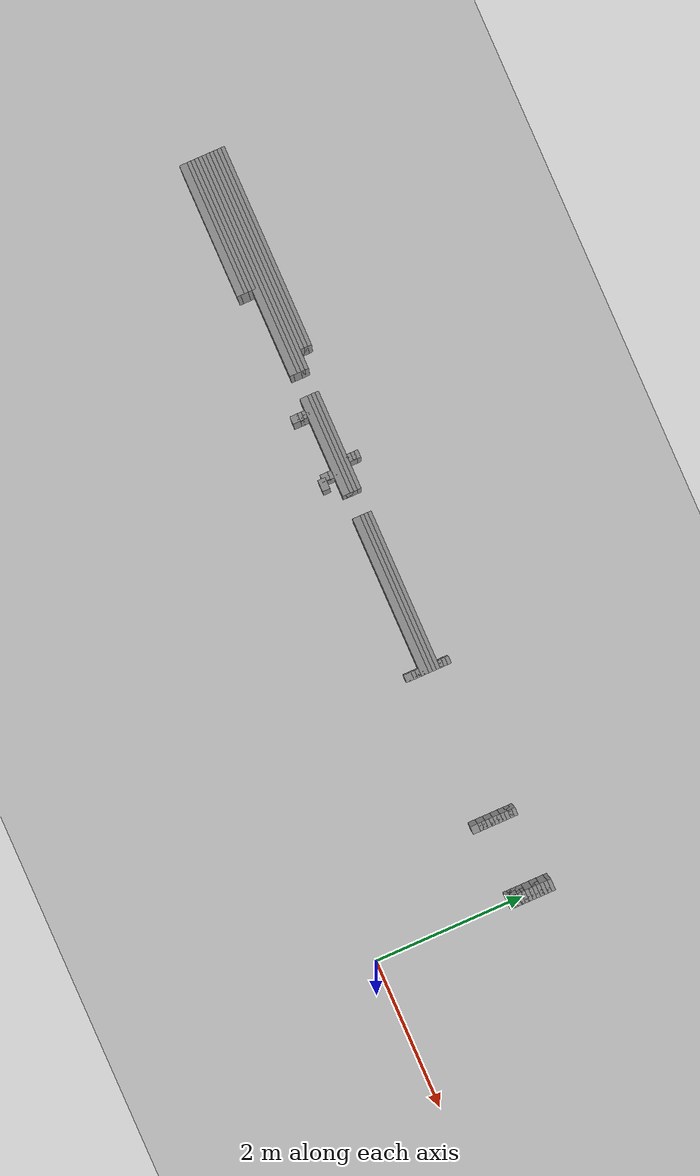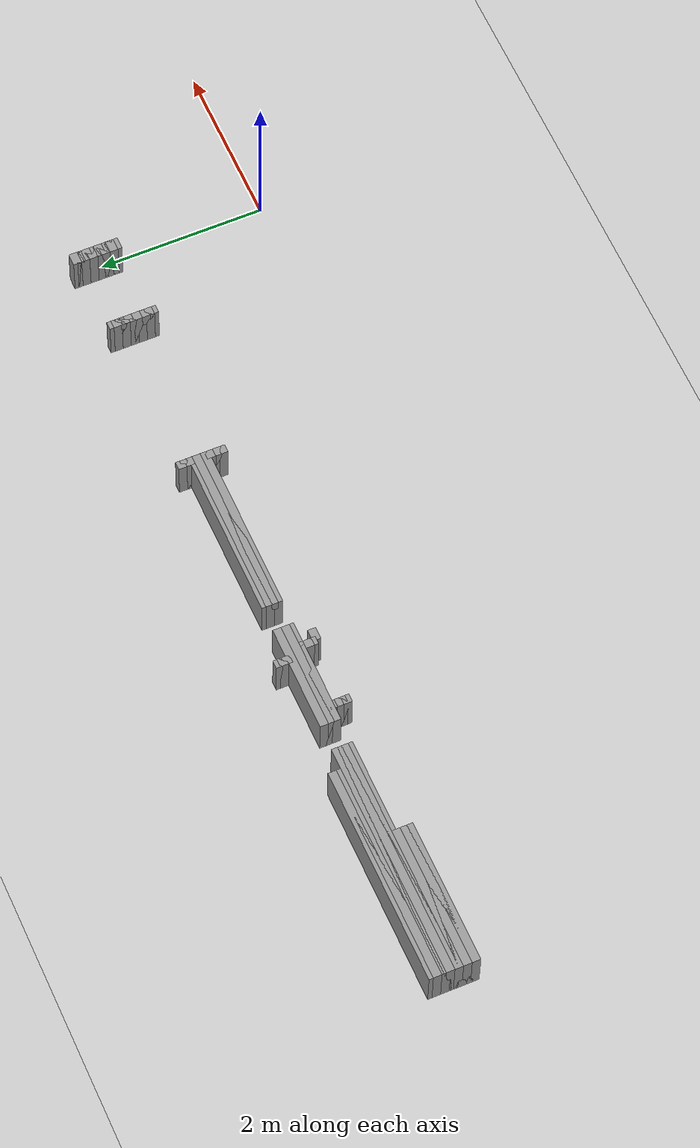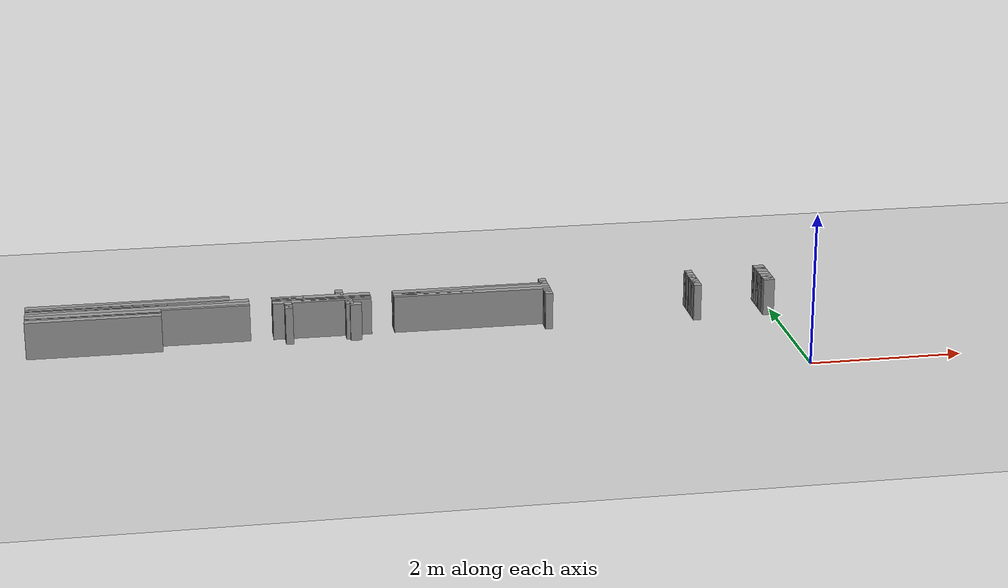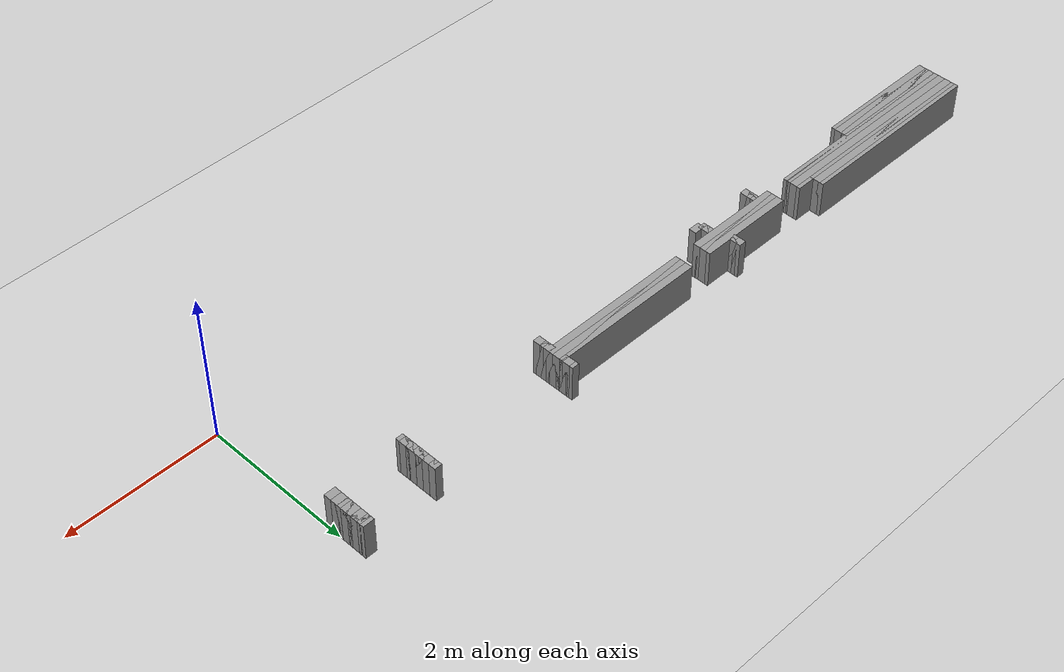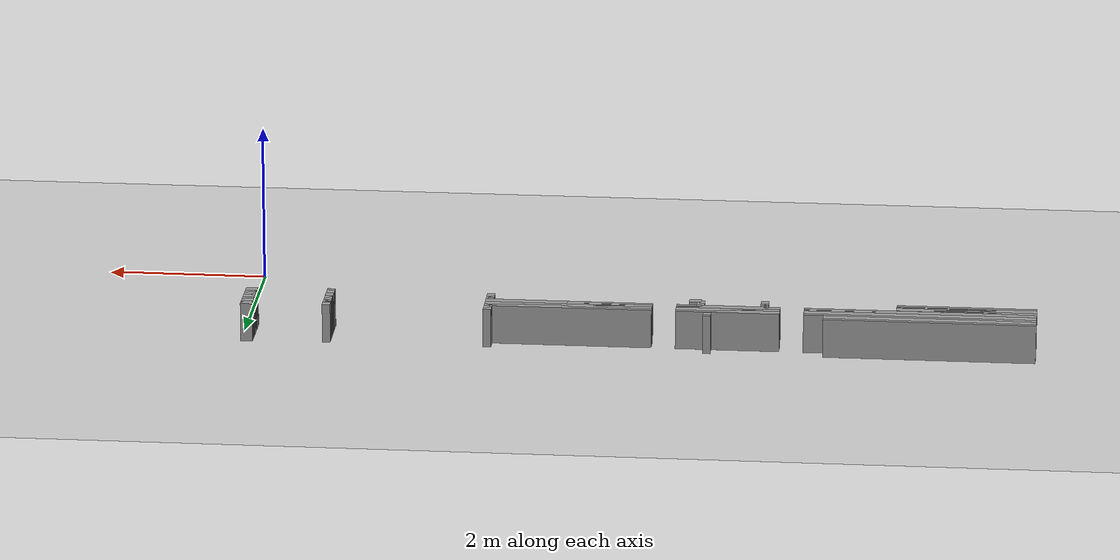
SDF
<sdf version="1.6">
 <world name="GridMap">
  <include><uri>model://sun</uri></include>
  <include><uri>model://ground_plane</uri></include>
  <model name="GridMap">
   <link name="Wall_(21.5,36.0)">
    <collision name="Wall_(21.5,36.0)_Collision">
     <geometry><box><size>0.1 0.1 0.5</size></box></geometry>
     <pose>-1.075 1.8 0.25 0 -0 0</pose>
    </collision>
    <inertial>
     <mass>0.5</mass>
     <pose>0 0.01 0 0 0 0</pose>
     <inertia><ixx>0.004</ixx><ixy>0.001</ixy><ixz>0</ixz><iyy>0.006</iyy><iyz>0</iyz><izz>0.007</izz></inertia>
    </inertial>
    <visual name="Wall_(21.5,36.0)_Visual">
     <geometry><box><size>0.1 0.1 0.5</size></box></geometry>
     <pose>-1.075 1.8 0.25 0 -0 0</pose>
     <material>
      <script><uri>file://media/materials/scripts/gazebo.material</uri><name>Gazebo/Grey</name></script>
      <ambient>1 1 1 1</ambient>
     </material>
     <meta><layer>0</layer></meta>
    </visual>
   </link>
   <link name="Wall_(62.0,36.0)">
    <collision name="Wall_(62.0,36.0)_Collision">
     <geometry><box><size>0.1 0.1 0.5</size></box></geometry>
     <pose>-3.1 1.8 0.25 0 -0 0</pose>
    </collision>
    <inertial>
     <mass>0.5</mass>
     <pose>0 0.01 0 0 0 0</pose>
     <inertia><ixx>0.004</ixx><ixy>0.001</ixy><ixz>0</ixz><iyy>0.006</iyy><iyz>0</iyz><izz>0.007</izz></inertia>
    </inertial>
    <visual name="Wall_(62.0,36.0)_Visual">
     <geometry><box><size>0.1 0.1 0.5</size></box></geometry>
     <pose>-3.1 1.8 0.25 0 -0 0</pose>
     <material>
      <script><uri>file://media/materials/scripts/gazebo.material</uri><name>Gazebo/Grey</name></script>
      <ambient>1 1 1 1</ambient>
     </material>
     <meta><layer>0</layer></meta>
    </visual>
   </link>
   <link name="Wall_(113.5,36.0)">
    <collision name="Wall_(113.5,36.0)_Collision">
     <geometry><box><size>0.15000000000000002 0.1 0.5</size></box></geometry>
     <pose>-5.675000000000001 1.8 0.25 0 -0 0</pose>
    </collision>
    <inertial>
     <mass>0.5</mass>
     <pose>0 0.01 0 0 0 0</pose>
     <inertia><ixx>0.004</ixx><ixy>0.001</ixy><ixz>0</ixz><iyy>0.006</iyy><iyz>0</iyz><izz>0.007</izz></inertia>
    </inertial>
    <visual name="Wall_(113.5,36.0)_Visual">
     <geometry><box><size>0.15000000000000002 0.1 0.5</size></box></geometry>
     <pose>-5.675000000000001 1.8 0.25 0 -0 0</pose>
     <material>
      <script><uri>file://media/materials/scripts/gazebo.material</uri><name>Gazebo/Grey</name></script>
      <ambient>1 1 1 1</ambient>
     </material>
     <meta><layer>0</layer></meta>
    </visual>
   </link>
   <link name="Wall_(131.0,36.0)">
    <collision name="Wall_(131.0,36.0)_Collision">
     <geometry><box><size>0.1 0.1 0.5</size></box></geometry>
     <pose>-6.550000000000001 1.8 0.25 0 -0 0</pose>
    </collision>
    <inertial>
     <mass>0.5</mass>
     <pose>0 0.01 0 0 0 0</pose>
     <inertia><ixx>0.004</ixx><ixy>0.001</ixy><ixz>0</ixz><iyy>0.006</iyy><iyz>0</iyz><izz>0.007</izz></inertia>
    </inertial>
    <visual name="Wall_(131.0,36.0)_Visual">
     <geometry><box><size>0.1 0.1 0.5</size></box></geometry>
     <pose>-6.550000000000001 1.8 0.25 0 -0 0</pose>
     <material>
      <script><uri>file://media/materials/scripts/gazebo.material</uri><name>Gazebo/Grey</name></script>
      <ambient>1 1 1 1</ambient>
     </material>
     <meta><layer>0</layer></meta>
    </visual>
   </link>
   <link name="Wall_(181.5,36.0)">
    <collision name="Wall_(181.5,36.0)_Collision">
     <geometry><box><size>1.75 0.1 0.5</size></box></geometry>
     <pose>-9.075000000000001 1.8 0.25 0 -0 0</pose>
    </collision>
    <inertial>
     <mass>0.5</mass>
     <pose>0 0.01 0 0 0 0</pose>
     <inertia><ixx>0.004</ixx><ixy>0.001</ixy><ixz>0</ixz><iyy>0.006</iyy><iyz>0</iyz><izz>0.007</izz></inertia>
    </inertial>
    <visual name="Wall_(181.5,36.0)_Visual">
     <geometry><box><size>1.75 0.1 0.5</size></box></geometry>
     <pose>-9.075000000000001 1.8 0.25 0 -0 0</pose>
     <material>
      <script><uri>file://media/materials/scripts/gazebo.material</uri><name>Gazebo/Grey</name></script>
      <ambient>1 1 1 1</ambient>
     </material>
     <meta><layer>0</layer></meta>
    </visual>
   </link>
   <link name="Wall_(1.5,37.0)">
    <collision name="Wall_(1.5,37.0)_Collision">
     <geometry><box><size>0.15000000000000002 0.1 0.5</size></box></geometry>
     <pose>-0.07500000000000001 1.85 0.25 0 -0 0</pose>
    </collision>
    <inertial>
     <mass>0.5</mass>
     <pose>0 0.01 0 0 0 0</pose>
     <inertia><ixx>0.004</ixx><ixy>0.001</ixy><ixz>0</ixz><iyy>0.006</iyy><iyz>0</iyz><izz>0.007</izz></inertia>
    </inertial>
    <visual name="Wall_(1.5,37.0)_Visual">
     <geometry><box><size>0.15000000000000002 0.1 0.5</size></box></geometry>
     <pose>-0.07500000000000001 1.85 0.25 0 -0 0</pose>
     <material>
      <script><uri>file://media/materials/scripts/gazebo.material</uri><name>Gazebo/Grey</name></script>
      <ambient>1 1 1 1</ambient>
     </material>
     <meta><layer>0</layer></meta>
    </visual>
   </link>
   <link name="Wall_(21.5,37.0)">
    <collision name="Wall_(21.5,37.0)_Collision">
     <geometry><box><size>0.1 0.1 0.5</size></box></geometry>
     <pose>-1.075 1.85 0.25 0 -0 0</pose>
    </collision>
    <inertial>
     <mass>0.5</mass>
     <pose>0 0.01 0 0 0 0</pose>
     <inertia><ixx>0.004</ixx><ixy>0.001</ixy><ixz>0</ixz><iyy>0.006</iyy><iyz>0</iyz><izz>0.007</izz></inertia>
    </inertial>
    <visual name="Wall_(21.5,37.0)_Visual">
     <geometry><box><size>0.1 0.1 0.5</size></box></geometry>
     <pose>-1.075 1.85 0.25 0 -0 0</pose>
     <material>
      <script><uri>file://media/materials/scripts/gazebo.material</uri><name>Gazebo/Grey</name></script>
      <ambient>1 1 1 1</ambient>
     </material>
     <meta><layer>0</layer></meta>
    </visual>
   </link>
   <link name="Wall_(62.0,37.0)">
    <collision name="Wall_(62.0,37.0)_Collision">
     <geometry><box><size>0.1 0.1 0.5</size></box></geometry>
     <pose>-3.1 1.85 0.25 0 -0 0</pose>
    </collision>
    <inertial>
     <mass>0.5</mass>
     <pose>0 0.01 0 0 0 0</pose>
     <inertia><ixx>0.004</ixx><ixy>0.001</ixy><ixz>0</ixz><iyy>0.006</iyy><iyz>0</iyz><izz>0.007</izz></inertia>
    </inertial>
    <visual name="Wall_(62.0,37.0)_Visual">
     <geometry><box><size>0.1 0.1 0.5</size></box></geometry>
     <pose>-3.1 1.85 0.25 0 -0 0</pose>
     <material>
      <script><uri>file://media/materials/scripts/gazebo.material</uri><name>Gazebo/Grey</name></script>
      <ambient>1 1 1 1</ambient>
     </material>
     <meta><layer>0</layer></meta>
    </visual>
   </link>
   <link name="Wall_(115.0,37.0)">
    <collision name="Wall_(115.0,37.0)_Collision">
     <geometry><box><size>0.1 0.1 0.5</size></box></geometry>
     <pose>-5.75 1.85 0.25 0 -0 0</pose>
    </collision>
    <inertial>
     <mass>0.5</mass>
     <pose>0 0.01 0 0 0 0</pose>
     <inertia><ixx>0.004</ixx><ixy>0.001</ixy><ixz>0</ixz><iyy>0.006</iyy><iyz>0</iyz><izz>0.007</izz></inertia>
    </inertial>
    <visual name="Wall_(115.0,37.0)_Visual">
     <geometry><box><size>0.1 0.1 0.5</size></box></geometry>
     <pose>-5.75 1.85 0.25 0 -0 0</pose>
     <material>
      <script><uri>file://media/materials/scripts/gazebo.material</uri><name>Gazebo/Grey</name></script>
      <ambient>1 1 1 1</ambient>
     </material>
     <meta><layer>0</layer></meta>
    </visual>
   </link>
   <link name="Wall_(131.0,37.0)">
    <collision name="Wall_(131.0,37.0)_Collision">
     <geometry><box><size>0.1 0.1 0.5</size></box></geometry>
     <pose>-6.550000000000001 1.85 0.25 0 -0 0</pose>
    </collision>
    <inertial>
     <mass>0.5</mass>
     <pose>0 0.01 0 0 0 0</pose>
     <inertia><ixx>0.004</ixx><ixy>0.001</ixy><ixz>0</ixz><iyy>0.006</iyy><iyz>0</iyz><izz>0.007</izz></inertia>
    </inertial>
    <visual name="Wall_(131.0,37.0)_Visual">
     <geometry><box><size>0.1 0.1 0.5</size></box></geometry>
     <pose>-6.550000000000001 1.85 0.25 0 -0 0</pose>
     <material>
      <script><uri>file://media/materials/scripts/gazebo.material</uri><name>Gazebo/Grey</name></script>
      <ambient>1 1 1 1</ambient>
     </material>
     <meta><layer>0</layer></meta>
    </visual>
   </link>
   <link name="Wall_(181.5,37.0)">
    <collision name="Wall_(181.5,37.0)_Collision">
     <geometry><box><size>1.75 0.1 0.5</size></box></geometry>
     <pose>-9.075000000000001 1.85 0.25 0 -0 0</pose>
    </collision>
    <inertial>
     <mass>0.5</mass>
     <pose>0 0.01 0 0 0 0</pose>
     <inertia><ixx>0.004</ixx><ixy>0.001</ixy><ixz>0</ixz><iyy>0.006</iyy><iyz>0</iyz><izz>0.007</izz></inertia>
    </inertial>
    <visual name="Wall_(181.5,37.0)_Visual">
     <geometry><box><size>1.75 0.1 0.5</size></box></geometry>
     <pose>-9.075000000000001 1.85 0.25 0 -0 0</pose>
     <material>
      <script><uri>file://media/materials/scripts/gazebo.material</uri><name>Gazebo/Grey</name></script>
      <ambient>1 1 1 1</ambient>
     </material>
     <meta><layer>0</layer></meta>
    </visual>
   </link>
   <link name="Wall_(1.5,38.0)">
    <collision name="Wall_(1.5,38.0)_Collision">
     <geometry><box><size>0.15000000000000002 0.1 0.5</size></box></geometry>
     <pose>-0.07500000000000001 1.9000000000000001 0.25 0 -0 0</pose>
    </collision>
    <inertial>
     <mass>0.5</mass>
     <pose>0 0.01 0 0 0 0</pose>
     <inertia><ixx>0.004</ixx><ixy>0.001</ixy><ixz>0</ixz><iyy>0.006</iyy><iyz>0</iyz><izz>0.007</izz></inertia>
    </inertial>
    <visual name="Wall_(1.5,38.0)_Visual">
     <geometry><box><size>0.15000000000000002 0.1 0.5</size></box></geometry>
     <pose>-0.07500000000000001 1.9000000000000001 0.25 0 -0 0</pose>
     <material>
      <script><uri>file://media/materials/scripts/gazebo.material</uri><name>Gazebo/Grey</name></script>
      <ambient>1 1 1 1</ambient>
     </material>
     <meta><layer>0</layer></meta>
    </visual>
   </link>
   <link name="Wall_(21.5,38.0)">
    <collision name="Wall_(21.5,38.0)_Collision">
     <geometry><box><size>0.1 0.1 0.5</size></box></geometry>
     <pose>-1.075 1.9000000000000001 0.25 0 -0 0</pose>
    </collision>
    <inertial>
     <mass>0.5</mass>
     <pose>0 0.01 0 0 0 0</pose>
     <inertia><ixx>0.004</ixx><ixy>0.001</ixy><ixz>0</ixz><iyy>0.006</iyy><iyz>0</iyz><izz>0.007</izz></inertia>
    </inertial>
    <visual name="Wall_(21.5,38.0)_Visual">
     <geometry><box><size>0.1 0.1 0.5</size></box></geometry>
     <pose>-1.075 1.9000000000000001 0.25 0 -0 0</pose>
     <material>
      <script><uri>file://media/materials/scripts/gazebo.material</uri><name>Gazebo/Grey</name></script>
      <ambient>1 1 1 1</ambient>
     </material>
     <meta><layer>0</layer></meta>
    </visual>
   </link>
   <link name="Wall_(62.0,38.0)">
    <collision name="Wall_(62.0,38.0)_Collision">
     <geometry><box><size>0.1 0.1 0.5</size></box></geometry>
     <pose>-3.1 1.9000000000000001 0.25 0 -0 0</pose>
    </collision>
    <inertial>
     <mass>0.5</mass>
     <pose>0 0.01 0 0 0 0</pose>
     <inertia><ixx>0.004</ixx><ixy>0.001</ixy><ixz>0</ixz><iyy>0.006</iyy><iyz>0</iyz><izz>0.007</izz></inertia>
    </inertial>
    <visual name="Wall_(62.0,38.0)_Visual">
     <geometry><box><size>0.1 0.1 0.5</size></box></geometry>
     <pose>-3.1 1.9000000000000001 0.25 0 -0 0</pose>
     <material>
      <script><uri>file://media/materials/scripts/gazebo.material</uri><name>Gazebo/Grey</name></script>
      <ambient>1 1 1 1</ambient>
     </material>
     <meta><layer>0</layer></meta>
    </visual>
   </link>
   <link name="Wall_(115.0,38.0)">
    <collision name="Wall_(115.0,38.0)_Collision">
     <geometry><box><size>0.1 0.1 0.5</size></box></geometry>
     <pose>-5.75 1.9000000000000001 0.25 0 -0 0</pose>
    </collision>
    <inertial>
     <mass>0.5</mass>
     <pose>0 0.01 0 0 0 0</pose>
     <inertia><ixx>0.004</ixx><ixy>0.001</ixy><ixz>0</ixz><iyy>0.006</iyy><iyz>0</iyz><izz>0.007</izz></inertia>
    </inertial>
    <visual name="Wall_(115.0,38.0)_Visual">
     <geometry><box><size>0.1 0.1 0.5</size></box></geometry>
     <pose>-5.75 1.9000000000000001 0.25 0 -0 0</pose>
     <material>
      <script><uri>file://media/materials/scripts/gazebo.material</uri><name>Gazebo/Grey</name></script>
      <ambient>1 1 1 1</ambient>
     </material>
     <meta><layer>0</layer></meta>
    </visual>
   </link>
   <link name="Wall_(131.0,38.0)">
    <collision name="Wall_(131.0,38.0)_Collision">
     <geometry><box><size>0.1 0.1 0.5</size></box></geometry>
     <pose>-6.550000000000001 1.9000000000000001 0.25 0 -0 0</pose>
    </collision>
    <inertial>
     <mass>0.5</mass>
     <pose>0 0.01 0 0 0 0</pose>
     <inertia><ixx>0.004</ixx><ixy>0.001</ixy><ixz>0</ixz><iyy>0.006</iyy><iyz>0</iyz><izz>0.007</izz></inertia>
    </inertial>
    <visual name="Wall_(131.0,38.0)_Visual">
     <geometry><box><size>0.1 0.1 0.5</size></box></geometry>
     <pose>-6.550000000000001 1.9000000000000001 0.25 0 -0 0</pose>
     <material>
      <script><uri>file://media/materials/scripts/gazebo.material</uri><name>Gazebo/Grey</name></script>
      <ambient>1 1 1 1</ambient>
     </material>
     <meta><layer>0</layer></meta>
    </visual>
   </link>
   <link name="Wall_(181.5,38.0)">
    <collision name="Wall_(181.5,38.0)_Collision">
     <geometry><box><size>1.75 0.1 0.5</size></box></geometry>
     <pose>-9.075000000000001 1.9000000000000001 0.25 0 -0 0</pose>
    </collision>
    <inertial>
     <mass>0.5</mass>
     <pose>0 0.01 0 0 0 0</pose>
     <inertia><ixx>0.004</ixx><ixy>0.001</ixy><ixz>0</ixz><iyy>0.006</iyy><iyz>0</iyz><izz>0.007</izz></inertia>
    </inertial>
    <visual name="Wall_(181.5,38.0)_Visual">
     <geometry><box><size>1.75 0.1 0.5</size></box></geometry>
     <pose>-9.075000000000001 1.9000000000000001 0.25 0 -0 0</pose>
     <material>
      <script><uri>file://media/materials/scripts/gazebo.material</uri><name>Gazebo/Grey</name></script>
      <ambient>1 1 1 1</ambient>
     </material>
     <meta><layer>0</layer></meta>
    </visual>
   </link>
   <link name="Wall_(1.5,39.0)">
    <collision name="Wall_(1.5,39.0)_Collision">
     <geometry><box><size>0.15000000000000002 0.1 0.5</size></box></geometry>
     <pose>-0.07500000000000001 1.9500000000000002 0.25 0 -0 0</pose>
    </collision>
    <inertial>
     <mass>0.5</mass>
     <pose>0 0.01 0 0 0 0</pose>
     <inertia><ixx>0.004</ixx><ixy>0.001</ixy><ixz>0</ixz><iyy>0.006</iyy><iyz>0</iyz><izz>0.007</izz></inertia>
    </inertial>
    <visual name="Wall_(1.5,39.0)_Visual">
     <geometry><box><size>0.15000000000000002 0.1 0.5</size></box></geometry>
     <pose>-0.07500000000000001 1.9500000000000002 0.25 0 -0 0</pose>
     <material>
      <script><uri>file://media/materials/scripts/gazebo.material</uri><name>Gazebo/Grey</name></script>
      <ambient>1 1 1 1</ambient>
     </material>
     <meta><layer>0</layer></meta>
    </visual>
   </link>
   <link name="Wall_(21.5,39.0)">
    <collision name="Wall_(21.5,39.0)_Collision">
     <geometry><box><size>0.1 0.1 0.5</size></box></geometry>
     <pose>-1.075 1.9500000000000002 0.25 0 -0 0</pose>
    </collision>
    <inertial>
     <mass>0.5</mass>
     <pose>0 0.01 0 0 0 0</pose>
     <inertia><ixx>0.004</ixx><ixy>0.001</ixy><ixz>0</ixz><iyy>0.006</iyy><iyz>0</iyz><izz>0.007</izz></inertia>
    </inertial>
    <visual name="Wall_(21.5,39.0)_Visual">
     <geometry><box><size>0.1 0.1 0.5</size></box></geometry>
     <pose>-1.075 1.9500000000000002 0.25 0 -0 0</pose>
     <material>
      <script><uri>file://media/materials/scripts/gazebo.material</uri><name>Gazebo/Grey</name></script>
      <ambient>1 1 1 1</ambient>
     </material>
     <meta><layer>0</layer></meta>
    </visual>
   </link>
   <link name="Wall_(62.0,39.0)">
    <collision name="Wall_(62.0,39.0)_Collision">
     <geometry><box><size>0.1 0.1 0.5</size></box></geometry>
     <pose>-3.1 1.9500000000000002 0.25 0 -0 0</pose>
    </collision>
    <inertial>
     <mass>0.5</mass>
     <pose>0 0.01 0 0 0 0</pose>
     <inertia><ixx>0.004</ixx><ixy>0.001</ixy><ixz>0</ixz><iyy>0.006</iyy><iyz>0</iyz><izz>0.007</izz></inertia>
    </inertial>
    <visual name="Wall_(62.0,39.0)_Visual">
     <geometry><box><size>0.1 0.1 0.5</size></box></geometry>
     <pose>-3.1 1.9500000000000002 0.25 0 -0 0</pose>
     <material>
      <script><uri>file://media/materials/scripts/gazebo.material</uri><name>Gazebo/Grey</name></script>
      <ambient>1 1 1 1</ambient>
     </material>
     <meta><layer>0</layer></meta>
    </visual>
   </link>
   <link name="Wall_(115.0,39.0)">
    <collision name="Wall_(115.0,39.0)_Collision">
     <geometry><box><size>0.1 0.1 0.5</size></box></geometry>
     <pose>-5.75 1.9500000000000002 0.25 0 -0 0</pose>
    </collision>
    <inertial>
     <mass>0.5</mass>
     <pose>0 0.01 0 0 0 0</pose>
     <inertia><ixx>0.004</ixx><ixy>0.001</ixy><ixz>0</ixz><iyy>0.006</iyy><iyz>0</iyz><izz>0.007</izz></inertia>
    </inertial>
    <visual name="Wall_(115.0,39.0)_Visual">
     <geometry><box><size>0.1 0.1 0.5</size></box></geometry>
     <pose>-5.75 1.9500000000000002 0.25 0 -0 0</pose>
     <material>
      <script><uri>file://media/materials/scripts/gazebo.material</uri><name>Gazebo/Grey</name></script>
      <ambient>1 1 1 1</ambient>
     </material>
     <meta><layer>0</layer></meta>
    </visual>
   </link>
   <link name="Wall_(131.0,39.0)">
    <collision name="Wall_(131.0,39.0)_Collision">
     <geometry><box><size>0.1 0.1 0.5</size></box></geometry>
     <pose>-6.550000000000001 1.9500000000000002 0.25 0 -0 0</pose>
    </collision>
    <inertial>
     <mass>0.5</mass>
     <pose>0 0.01 0 0 0 0</pose>
     <inertia><ixx>0.004</ixx><ixy>0.001</ixy><ixz>0</ixz><iyy>0.006</iyy><iyz>0</iyz><izz>0.007</izz></inertia>
    </inertial>
    <visual name="Wall_(131.0,39.0)_Visual">
     <geometry><box><size>0.1 0.1 0.5</size></box></geometry>
     <pose>-6.550000000000001 1.9500000000000002 0.25 0 -0 0</pose>
     <material>
      <script><uri>file://media/materials/scripts/gazebo.material</uri><name>Gazebo/Grey</name></script>
      <ambient>1 1 1 1</ambient>
     </material>
     <meta><layer>0</layer></meta>
    </visual>
   </link>
   <link name="Wall_(181.5,39.0)">
    <collision name="Wall_(181.5,39.0)_Collision">
     <geometry><box><size>1.75 0.1 0.5</size></box></geometry>
     <pose>-9.075000000000001 1.9500000000000002 0.25 0 -0 0</pose>
    </collision>
    <inertial>
     <mass>0.5</mass>
     <pose>0 0.01 0 0 0 0</pose>
     <inertia><ixx>0.004</ixx><ixy>0.001</ixy><ixz>0</ixz><iyy>0.006</iyy><iyz>0</iyz><izz>0.007</izz></inertia>
    </inertial>
    <visual name="Wall_(181.5,39.0)_Visual">
     <geometry><box><size>1.75 0.1 0.5</size></box></geometry>
     <pose>-9.075000000000001 1.9500000000000002 0.25 0 -0 0</pose>
     <material>
      <script><uri>file://media/materials/scripts/gazebo.material</uri><name>Gazebo/Grey</name></script>
      <ambient>1 1 1 1</ambient>
     </material>
     <meta><layer>0</layer></meta>
    </visual>
   </link>
   <link name="Wall_(1.5,40.0)">
    <collision name="Wall_(1.5,40.0)_Collision">
     <geometry><box><size>0.15000000000000002 0.1 0.5</size></box></geometry>
     <pose>-0.07500000000000001 2.0 0.25 0 -0 0</pose>
    </collision>
    <inertial>
     <mass>0.5</mass>
     <pose>0 0.01 0 0 0 0</pose>
     <inertia><ixx>0.004</ixx><ixy>0.001</ixy><ixz>0</ixz><iyy>0.006</iyy><iyz>0</iyz><izz>0.007</izz></inertia>
    </inertial>
    <visual name="Wall_(1.5,40.0)_Visual">
     <geometry><box><size>0.15000000000000002 0.1 0.5</size></box></geometry>
     <pose>-0.07500000000000001 2.0 0.25 0 -0 0</pose>
     <material>
      <script><uri>file://media/materials/scripts/gazebo.material</uri><name>Gazebo/Grey</name></script>
      <ambient>1 1 1 1</ambient>
     </material>
     <meta><layer>0</layer></meta>
    </visual>
   </link>
   <link name="Wall_(21.5,40.0)">
    <collision name="Wall_(21.5,40.0)_Collision">
     <geometry><box><size>0.1 0.1 0.5</size></box></geometry>
     <pose>-1.075 2.0 0.25 0 -0 0</pose>
    </collision>
    <inertial>
     <mass>0.5</mass>
     <pose>0 0.01 0 0 0 0</pose>
     <inertia><ixx>0.004</ixx><ixy>0.001</ixy><ixz>0</ixz><iyy>0.006</iyy><iyz>0</iyz><izz>0.007</izz></inertia>
    </inertial>
    <visual name="Wall_(21.5,40.0)_Visual">
     <geometry><box><size>0.1 0.1 0.5</size></box></geometry>
     <pose>-1.075 2.0 0.25 0 -0 0</pose>
     <material>
      <script><uri>file://media/materials/scripts/gazebo.material</uri><name>Gazebo/Grey</name></script>
      <ambient>1 1 1 1</ambient>
     </material>
     <meta><layer>0</layer></meta>
    </visual>
   </link>
   <link name="Wall_(82.0,40.0)">
    <collision name="Wall_(82.0,40.0)_Collision">
     <geometry><box><size>2.1 0.1 0.5</size></box></geometry>
     <pose>-4.1000000000000005 2.0 0.25 0 -0 0</pose>
    </collision>
    <inertial>
     <mass>0.5</mass>
     <pose>0 0.01 0 0 0 0</pose>
     <inertia><ixx>0.004</ixx><ixy>0.001</ixy><ixz>0</ixz><iyy>0.006</iyy><iyz>0</iyz><izz>0.007</izz></inertia>
    </inertial>
    <visual name="Wall_(82.0,40.0)_Visual">
     <geometry><box><size>2.1 0.1 0.5</size></box></geometry>
     <pose>-4.1000000000000005 2.0 0.25 0 -0 0</pose>
     <material>
      <script><uri>file://media/materials/scripts/gazebo.material</uri><name>Gazebo/Grey</name></script>
      <ambient>1 1 1 1</ambient>
     </material>
     <meta><layer>0</layer></meta>
    </visual>
   </link>
   <link name="Wall_(122.0,40.0)">
    <collision name="Wall_(122.0,40.0)_Collision">
     <geometry><box><size>1.3 0.1 0.5</size></box></geometry>
     <pose>-6.1000000000000005 2.0 0.25 0 -0 0</pose>
    </collision>
    <inertial>
     <mass>0.5</mass>
     <pose>0 0.01 0 0 0 0</pose>
     <inertia><ixx>0.004</ixx><ixy>0.001</ixy><ixz>0</ixz><iyy>0.006</iyy><iyz>0</iyz><izz>0.007</izz></inertia>
    </inertial>
    <visual name="Wall_(122.0,40.0)_Visual">
     <geometry><box><size>1.3 0.1 0.5</size></box></geometry>
     <pose>-6.1000000000000005 2.0 0.25 0 -0 0</pose>
     <material>
      <script><uri>file://media/materials/scripts/gazebo.material</uri><name>Gazebo/Grey</name></script>
      <ambient>1 1 1 1</ambient>
     </material>
     <meta><layer>0</layer></meta>
    </visual>
   </link>
   <link name="Wall_(170.0,40.0)">
    <collision name="Wall_(170.0,40.0)_Collision">
     <geometry><box><size>2.9000000000000004 0.1 0.5</size></box></geometry>
     <pose>-8.5 2.0 0.25 0 -0 0</pose>
    </collision>
    <inertial>
     <mass>0.5</mass>
     <pose>0 0.01 0 0 0 0</pose>
     <inertia><ixx>0.004</ixx><ixy>0.001</ixy><ixz>0</ixz><iyy>0.006</iyy><iyz>0</iyz><izz>0.007</izz></inertia>
    </inertial>
    <visual name="Wall_(170.0,40.0)_Visual">
     <geometry><box><size>2.9000000000000004 0.1 0.5</size></box></geometry>
     <pose>-8.5 2.0 0.25 0 -0 0</pose>
     <material>
      <script><uri>file://media/materials/scripts/gazebo.material</uri><name>Gazebo/Grey</name></script>
      <ambient>1 1 1 1</ambient>
     </material>
     <meta><layer>0</layer></meta>
    </visual>
   </link>
   <link name="Wall_(1.5,41.0)">
    <collision name="Wall_(1.5,41.0)_Collision">
     <geometry><box><size>0.15000000000000002 0.1 0.5</size></box></geometry>
     <pose>-0.07500000000000001 2.0500000000000003 0.25 0 -0 0</pose>
    </collision>
    <inertial>
     <mass>0.5</mass>
     <pose>0 0.01 0 0 0 0</pose>
     <inertia><ixx>0.004</ixx><ixy>0.001</ixy><ixz>0</ixz><iyy>0.006</iyy><iyz>0</iyz><izz>0.007</izz></inertia>
    </inertial>
    <visual name="Wall_(1.5,41.0)_Visual">
     <geometry><box><size>0.15000000000000002 0.1 0.5</size></box></geometry>
     <pose>-0.07500000000000001 2.0500000000000003 0.25 0 -0 0</pose>
     <material>
      <script><uri>file://media/materials/scripts/gazebo.material</uri><name>Gazebo/Grey</name></script>
      <ambient>1 1 1 1</ambient>
     </material>
     <meta><layer>0</layer></meta>
    </visual>
   </link>
   <link name="Wall_(21.5,41.0)">
    <collision name="Wall_(21.5,41.0)_Collision">
     <geometry><box><size>0.1 0.1 0.5</size></box></geometry>
     <pose>-1.075 2.0500000000000003 0.25 0 -0 0</pose>
    </collision>
    <inertial>
     <mass>0.5</mass>
     <pose>0 0.01 0 0 0 0</pose>
     <inertia><ixx>0.004</ixx><ixy>0.001</ixy><ixz>0</ixz><iyy>0.006</iyy><iyz>0</iyz><izz>0.007</izz></inertia>
    </inertial>
    <visual name="Wall_(21.5,41.0)_Visual">
     <geometry><box><size>0.1 0.1 0.5</size></box></geometry>
     <pose>-1.075 2.0500000000000003 0.25 0 -0 0</pose>
     <material>
      <script><uri>file://media/materials/scripts/gazebo.material</uri><name>Gazebo/Grey</name></script>
      <ambient>1 1 1 1</ambient>
     </material>
     <meta><layer>0</layer></meta>
    </visual>
   </link>
   <link name="Wall_(82.0,41.0)">
    <collision name="Wall_(82.0,41.0)_Collision">
     <geometry><box><size>2.1 0.1 0.5</size></box></geometry>
     <pose>-4.1000000000000005 2.0500000000000003 0.25 0 -0 0</pose>
    </collision>
    <inertial>
     <mass>0.5</mass>
     <pose>0 0.01 0 0 0 0</pose>
     <inertia><ixx>0.004</ixx><ixy>0.001</ixy><ixz>0</ixz><iyy>0.006</iyy><iyz>0</iyz><izz>0.007</izz></inertia>
    </inertial>
    <visual name="Wall_(82.0,41.0)_Visual">
     <geometry><box><size>2.1 0.1 0.5</size></box></geometry>
     <pose>-4.1000000000000005 2.0500000000000003 0.25 0 -0 0</pose>
     <material>
      <script><uri>file://media/materials/scripts/gazebo.material</uri><name>Gazebo/Grey</name></script>
      <ambient>1 1 1 1</ambient>
     </material>
     <meta><layer>0</layer></meta>
    </visual>
   </link>
   <link name="Wall_(122.0,41.0)">
    <collision name="Wall_(122.0,41.0)_Collision">
     <geometry><box><size>1.3 0.1 0.5</size></box></geometry>
     <pose>-6.1000000000000005 2.0500000000000003 0.25 0 -0 0</pose>
    </collision>
    <inertial>
     <mass>0.5</mass>
     <pose>0 0.01 0 0 0 0</pose>
     <inertia><ixx>0.004</ixx><ixy>0.001</ixy><ixz>0</ixz><iyy>0.006</iyy><iyz>0</iyz><izz>0.007</izz></inertia>
    </inertial>
    <visual name="Wall_(122.0,41.0)_Visual">
     <geometry><box><size>1.3 0.1 0.5</size></box></geometry>
     <pose>-6.1000000000000005 2.0500000000000003 0.25 0 -0 0</pose>
     <material>
      <script><uri>file://media/materials/scripts/gazebo.material</uri><name>Gazebo/Grey</name></script>
      <ambient>1 1 1 1</ambient>
     </material>
     <meta><layer>0</layer></meta>
    </visual>
   </link>
   <link name="Wall_(170.0,41.0)">
    <collision name="Wall_(170.0,41.0)_Collision">
     <geometry><box><size>2.9000000000000004 0.1 0.5</size></box></geometry>
     <pose>-8.5 2.0500000000000003 0.25 0 -0 0</pose>
    </collision>
    <inertial>
     <mass>0.5</mass>
     <pose>0 0.01 0 0 0 0</pose>
     <inertia><ixx>0.004</ixx><ixy>0.001</ixy><ixz>0</ixz><iyy>0.006</iyy><iyz>0</iyz><izz>0.007</izz></inertia>
    </inertial>
    <visual name="Wall_(170.0,41.0)_Visual">
     <geometry><box><size>2.9000000000000004 0.1 0.5</size></box></geometry>
     <pose>-8.5 2.0500000000000003 0.25 0 -0 0</pose>
     <material>
      <script><uri>file://media/materials/scripts/gazebo.material</uri><name>Gazebo/Grey</name></script>
      <ambient>1 1 1 1</ambient>
     </material>
     <meta><layer>0</layer></meta>
    </visual>
   </link>
   <link name="Wall_(1.5,42.0)">
    <collision name="Wall_(1.5,42.0)_Collision">
     <geometry><box><size>0.15000000000000002 0.1 0.5</size></box></geometry>
     <pose>-0.07500000000000001 2.1 0.25 0 -0 0</pose>
    </collision>
    <inertial>
     <mass>0.5</mass>
     <pose>0 0.01 0 0 0 0</pose>
     <inertia><ixx>0.004</ixx><ixy>0.001</ixy><ixz>0</ixz><iyy>0.006</iyy><iyz>0</iyz><izz>0.007</izz></inertia>
    </inertial>
    <visual name="Wall_(1.5,42.0)_Visual">
     <geometry><box><size>0.15000000000000002 0.1 0.5</size></box></geometry>
     <pose>-0.07500000000000001 2.1 0.25 0 -0 0</pose>
     <material>
      <script><uri>file://media/materials/scripts/gazebo.material</uri><name>Gazebo/Grey</name></script>
      <ambient>1 1 1 1</ambient>
     </material>
     <meta><layer>0</layer></meta>
    </visual>
   </link>
   <link name="Wall_(21.5,42.0)">
    <collision name="Wall_(21.5,42.0)_Collision">
     <geometry><box><size>0.1 0.1 0.5</size></box></geometry>
     <pose>-1.075 2.1 0.25 0 -0 0</pose>
    </collision>
    <inertial>
     <mass>0.5</mass>
     <pose>0 0.01 0 0 0 0</pose>
     <inertia><ixx>0.004</ixx><ixy>0.001</ixy><ixz>0</ixz><iyy>0.006</iyy><iyz>0</iyz><izz>0.007</izz></inertia>
    </inertial>
    <visual name="Wall_(21.5,42.0)_Visual">
     <geometry><box><size>0.1 0.1 0.5</size></box></geometry>
     <pose>-1.075 2.1 0.25 0 -0 0</pose>
     <material>
      <script><uri>file://media/materials/scripts/gazebo.material</uri><name>Gazebo/Grey</name></script>
      <ambient>1 1 1 1</ambient>
     </material>
     <meta><layer>0</layer></meta>
    </visual>
   </link>
   <link name="Wall_(82.0,42.0)">
    <collision name="Wall_(82.0,42.0)_Collision">
     <geometry><box><size>2.1 0.1 0.5</size></box></geometry>
     <pose>-4.1000000000000005 2.1 0.25 0 -0 0</pose>
    </collision>
    <inertial>
     <mass>0.5</mass>
     <pose>0 0.01 0 0 0 0</pose>
     <inertia><ixx>0.004</ixx><ixy>0.001</ixy><ixz>0</ixz><iyy>0.006</iyy><iyz>0</iyz><izz>0.007</izz></inertia>
    </inertial>
    <visual name="Wall_(82.0,42.0)_Visual">
     <geometry><box><size>2.1 0.1 0.5</size></box></geometry>
     <pose>-4.1000000000000005 2.1 0.25 0 -0 0</pose>
     <material>
      <script><uri>file://media/materials/scripts/gazebo.material</uri><name>Gazebo/Grey</name></script>
      <ambient>1 1 1 1</ambient>
     </material>
     <meta><layer>0</layer></meta>
    </visual>
   </link>
   <link name="Wall_(122.0,42.0)">
    <collision name="Wall_(122.0,42.0)_Collision">
     <geometry><box><size>1.3 0.1 0.5</size></box></geometry>
     <pose>-6.1000000000000005 2.1 0.25 0 -0 0</pose>
    </collision>
    <inertial>
     <mass>0.5</mass>
     <pose>0 0.01 0 0 0 0</pose>
     <inertia><ixx>0.004</ixx><ixy>0.001</ixy><ixz>0</ixz><iyy>0.006</iyy><iyz>0</iyz><izz>0.007</izz></inertia>
    </inertial>
    <visual name="Wall_(122.0,42.0)_Visual">
     <geometry><box><size>1.3 0.1 0.5</size></box></geometry>
     <pose>-6.1000000000000005 2.1 0.25 0 -0 0</pose>
     <material>
      <script><uri>file://media/materials/scripts/gazebo.material</uri><name>Gazebo/Grey</name></script>
      <ambient>1 1 1 1</ambient>
     </material>
     <meta><layer>0</layer></meta>
    </visual>
   </link>
   <link name="Wall_(170.0,42.0)">
    <collision name="Wall_(170.0,42.0)_Collision">
     <geometry><box><size>2.9000000000000004 0.1 0.5</size></box></geometry>
     <pose>-8.5 2.1 0.25 0 -0 0</pose>
    </collision>
    <inertial>
     <mass>0.5</mass>
     <pose>0 0.01 0 0 0 0</pose>
     <inertia><ixx>0.004</ixx><ixy>0.001</ixy><ixz>0</ixz><iyy>0.006</iyy><iyz>0</iyz><izz>0.007</izz></inertia>
    </inertial>
    <visual name="Wall_(170.0,42.0)_Visual">
     <geometry><box><size>2.9000000000000004 0.1 0.5</size></box></geometry>
     <pose>-8.5 2.1 0.25 0 -0 0</pose>
     <material>
      <script><uri>file://media/materials/scripts/gazebo.material</uri><name>Gazebo/Grey</name></script>
      <ambient>1 1 1 1</ambient>
     </material>
     <meta><layer>0</layer></meta>
    </visual>
   </link>
   <link name="Wall_(1.5,43.0)">
    <collision name="Wall_(1.5,43.0)_Collision">
     <geometry><box><size>0.15000000000000002 0.1 0.5</size></box></geometry>
     <pose>-0.07500000000000001 2.15 0.25 0 -0 0</pose>
    </collision>
    <inertial>
     <mass>0.5</mass>
     <pose>0 0.01 0 0 0 0</pose>
     <inertia><ixx>0.004</ixx><ixy>0.001</ixy><ixz>0</ixz><iyy>0.006</iyy><iyz>0</iyz><izz>0.007</izz></inertia>
    </inertial>
    <visual name="Wall_(1.5,43.0)_Visual">
     <geometry><box><size>0.15000000000000002 0.1 0.5</size></box></geometry>
     <pose>-0.07500000000000001 2.15 0.25 0 -0 0</pose>
     <material>
      <script><uri>file://media/materials/scripts/gazebo.material</uri><name>Gazebo/Grey</name></script>
      <ambient>1 1 1 1</ambient>
     </material>
     <meta><layer>0</layer></meta>
    </visual>
   </link>
   <link name="Wall_(21.5,43.0)">
    <collision name="Wall_(21.5,43.0)_Collision">
     <geometry><box><size>0.1 0.1 0.5</size></box></geometry>
     <pose>-1.075 2.15 0.25 0 -0 0</pose>
    </collision>
    <inertial>
     <mass>0.5</mass>
     <pose>0 0.01 0 0 0 0</pose>
     <inertia><ixx>0.004</ixx><ixy>0.001</ixy><ixz>0</ixz><iyy>0.006</iyy><iyz>0</iyz><izz>0.007</izz></inertia>
    </inertial>
    <visual name="Wall_(21.5,43.0)_Visual">
     <geometry><box><size>0.1 0.1 0.5</size></box></geometry>
     <pose>-1.075 2.15 0.25 0 -0 0</pose>
     <material>
      <script><uri>file://media/materials/scripts/gazebo.material</uri><name>Gazebo/Grey</name></script>
      <ambient>1 1 1 1</ambient>
     </material>
     <meta><layer>0</layer></meta>
    </visual>
   </link>
   <link name="Wall_(82.0,43.0)">
    <collision name="Wall_(82.0,43.0)_Collision">
     <geometry><box><size>2.1 0.1 0.5</size></box></geometry>
     <pose>-4.1000000000000005 2.15 0.25 0 -0 0</pose>
    </collision>
    <inertial>
     <mass>0.5</mass>
     <pose>0 0.01 0 0 0 0</pose>
     <inertia><ixx>0.004</ixx><ixy>0.001</ixy><ixz>0</ixz><iyy>0.006</iyy><iyz>0</iyz><izz>0.007</izz></inertia>
    </inertial>
    <visual name="Wall_(82.0,43.0)_Visual">
     <geometry><box><size>2.1 0.1 0.5</size></box></geometry>
     <pose>-4.1000000000000005 2.15 0.25 0 -0 0</pose>
     <material>
      <script><uri>file://media/materials/scripts/gazebo.material</uri><name>Gazebo/Grey</name></script>
      <ambient>1 1 1 1</ambient>
     </material>
     <meta><layer>0</layer></meta>
    </visual>
   </link>
   <link name="Wall_(122.0,43.0)">
    <collision name="Wall_(122.0,43.0)_Collision">
     <geometry><box><size>1.3 0.1 0.5</size></box></geometry>
     <pose>-6.1000000000000005 2.15 0.25 0 -0 0</pose>
    </collision>
    <inertial>
     <mass>0.5</mass>
     <pose>0 0.01 0 0 0 0</pose>
     <inertia><ixx>0.004</ixx><ixy>0.001</ixy><ixz>0</ixz><iyy>0.006</iyy><iyz>0</iyz><izz>0.007</izz></inertia>
    </inertial>
    <visual name="Wall_(122.0,43.0)_Visual">
     <geometry><box><size>1.3 0.1 0.5</size></box></geometry>
     <pose>-6.1000000000000005 2.15 0.25 0 -0 0</pose>
     <material>
      <script><uri>file://media/materials/scripts/gazebo.material</uri><name>Gazebo/Grey</name></script>
      <ambient>1 1 1 1</ambient>
     </material>
     <meta><layer>0</layer></meta>
    </visual>
   </link>
   <link name="Wall_(170.0,43.0)">
    <collision name="Wall_(170.0,43.0)_Collision">
     <geometry><box><size>2.9000000000000004 0.1 0.5</size></box></geometry>
     <pose>-8.5 2.15 0.25 0 -0 0</pose>
    </collision>
    <inertial>
     <mass>0.5</mass>
     <pose>0 0.01 0 0 0 0</pose>
     <inertia><ixx>0.004</ixx><ixy>0.001</ixy><ixz>0</ixz><iyy>0.006</iyy><iyz>0</iyz><izz>0.007</izz></inertia>
    </inertial>
    <visual name="Wall_(170.0,43.0)_Visual">
     <geometry><box><size>2.9000000000000004 0.1 0.5</size></box></geometry>
     <pose>-8.5 2.15 0.25 0 -0 0</pose>
     <material>
      <script><uri>file://media/materials/scripts/gazebo.material</uri><name>Gazebo/Grey</name></script>
      <ambient>1 1 1 1</ambient>
     </material>
     <meta><layer>0</layer></meta>
    </visual>
   </link>
   <link name="Wall_(1.5,44.0)">
    <collision name="Wall_(1.5,44.0)_Collision">
     <geometry><box><size>0.15000000000000002 0.1 0.5</size></box></geometry>
     <pose>-0.07500000000000001 2.2 0.25 0 -0 0</pose>
    </collision>
    <inertial>
     <mass>0.5</mass>
     <pose>0 0.01 0 0 0 0</pose>
     <inertia><ixx>0.004</ixx><ixy>0.001</ixy><ixz>0</ixz><iyy>0.006</iyy><iyz>0</iyz><izz>0.007</izz></inertia>
    </inertial>
    <visual name="Wall_(1.5,44.0)_Visual">
     <geometry><box><size>0.15000000000000002 0.1 0.5</size></box></geometry>
     <pose>-0.07500000000000001 2.2 0.25 0 -0 0</pose>
     <material>
      <script><uri>file://media/materials/scripts/gazebo.material</uri><name>Gazebo/Grey</name></script>
      <ambient>1 1 1 1</ambient>
     </material>
     <meta><layer>0</layer></meta>
    </visual>
   </link>
   <link name="Wall_(21.5,44.0)">
    <collision name="Wall_(21.5,44.0)_Collision">
     <geometry><box><size>0.1 0.1 0.5</size></box></geometry>
     <pose>-1.075 2.2 0.25 0 -0 0</pose>
    </collision>
    <inertial>
     <mass>0.5</mass>
     <pose>0 0.01 0 0 0 0</pose>
     <inertia><ixx>0.004</ixx><ixy>0.001</ixy><ixz>0</ixz><iyy>0.006</iyy><iyz>0</iyz><izz>0.007</izz></inertia>
    </inertial>
    <visual name="Wall_(21.5,44.0)_Visual">
     <geometry><box><size>0.1 0.1 0.5</size></box></geometry>
     <pose>-1.075 2.2 0.25 0 -0 0</pose>
     <material>
      <script><uri>file://media/materials/scripts/gazebo.material</uri><name>Gazebo/Grey</name></script>
      <ambient>1 1 1 1</ambient>
     </material>
     <meta><layer>0</layer></meta>
    </visual>
   </link>
   <link name="Wall_(62.0,44.0)">
    <collision name="Wall_(62.0,44.0)_Collision">
     <geometry><box><size>0.1 0.1 0.5</size></box></geometry>
     <pose>-3.1 2.2 0.25 0 -0 0</pose>
    </collision>
    <inertial>
     <mass>0.5</mass>
     <pose>0 0.01 0 0 0 0</pose>
     <inertia><ixx>0.004</ixx><ixy>0.001</ixy><ixz>0</ixz><iyy>0.006</iyy><iyz>0</iyz><izz>0.007</izz></inertia>
    </inertial>
    <visual name="Wall_(62.0,44.0)_Visual">
     <geometry><box><size>0.1 0.1 0.5</size></box></geometry>
     <pose>-3.1 2.2 0.25 0 -0 0</pose>
     <material>
      <script><uri>file://media/materials/scripts/gazebo.material</uri><name>Gazebo/Grey</name></script>
      <ambient>1 1 1 1</ambient>
     </material>
     <meta><layer>0</layer></meta>
    </visual>
   </link>
   <link name="Wall_(117.0,44.0)">
    <collision name="Wall_(117.0,44.0)_Collision">
     <geometry><box><size>0.1 0.1 0.5</size></box></geometry>
     <pose>-5.8500000000000005 2.2 0.25 0 -0 0</pose>
    </collision>
    <inertial>
     <mass>0.5</mass>
     <pose>0 0.01 0 0 0 0</pose>
     <inertia><ixx>0.004</ixx><ixy>0.001</ixy><ixz>0</ixz><iyy>0.006</iyy><iyz>0</iyz><izz>0.007</izz></inertia>
    </inertial>
    <visual name="Wall_(117.0,44.0)_Visual">
     <geometry><box><size>0.1 0.1 0.5</size></box></geometry>
     <pose>-5.8500000000000005 2.2 0.25 0 -0 0</pose>
     <material>
      <script><uri>file://media/materials/scripts/gazebo.material</uri><name>Gazebo/Grey</name></script>
      <ambient>1 1 1 1</ambient>
     </material>
     <meta><layer>0</layer></meta>
    </visual>
   </link>
   <link name="Wall_(172.5,44.0)">
    <collision name="Wall_(172.5,44.0)_Collision">
     <geometry><box><size>2.6500000000000004 0.1 0.5</size></box></geometry>
     <pose>-8.625 2.2 0.25 0 -0 0</pose>
    </collision>
    <inertial>
     <mass>0.5</mass>
     <pose>0 0.01 0 0 0 0</pose>
     <inertia><ixx>0.004</ixx><ixy>0.001</ixy><ixz>0</ixz><iyy>0.006</iyy><iyz>0</iyz><izz>0.007</izz></inertia>
    </inertial>
    <visual name="Wall_(172.5,44.0)_Visual">
     <geometry><box><size>2.6500000000000004 0.1 0.5</size></box></geometry>
     <pose>-8.625 2.2 0.25 0 -0 0</pose>
     <material>
      <script><uri>file://media/materials/scripts/gazebo.material</uri><name>Gazebo/Grey</name></script>
      <ambient>1 1 1 1</ambient>
     </material>
     <meta><layer>0</layer></meta>
    </visual>
   </link>
   <link name="Wall_(1.5,45.0)">
    <collision name="Wall_(1.5,45.0)_Collision">
     <geometry><box><size>0.15000000000000002 0.1 0.5</size></box></geometry>
     <pose>-0.07500000000000001 2.25 0.25 0 -0 0</pose>
    </collision>
    <inertial>
     <mass>0.5</mass>
     <pose>0 0.01 0 0 0 0</pose>
     <inertia><ixx>0.004</ixx><ixy>0.001</ixy><ixz>0</ixz><iyy>0.006</iyy><iyz>0</iyz><izz>0.007</izz></inertia>
    </inertial>
    <visual name="Wall_(1.5,45.0)_Visual">
     <geometry><box><size>0.15000000000000002 0.1 0.5</size></box></geometry>
     <pose>-0.07500000000000001 2.25 0.25 0 -0 0</pose>
     <material>
      <script><uri>file://media/materials/scripts/gazebo.material</uri><name>Gazebo/Grey</name></script>
      <ambient>1 1 1 1</ambient>
     </material>
     <meta><layer>0</layer></meta>
    </visual>
   </link>
   <link name="Wall_(21.5,45.0)">
    <collision name="Wall_(21.5,45.0)_Collision">
     <geometry><box><size>0.1 0.1 0.5</size></box></geometry>
     <pose>-1.075 2.25 0.25 0 -0 0</pose>
    </collision>
    <inertial>
     <mass>0.5</mass>
     <pose>0 0.01 0 0 0 0</pose>
     <inertia><ixx>0.004</ixx><ixy>0.001</ixy><ixz>0</ixz><iyy>0.006</iyy><iyz>0</iyz><izz>0.007</izz></inertia>
    </inertial>
    <visual name="Wall_(21.5,45.0)_Visual">
     <geometry><box><size>0.1 0.1 0.5</size></box></geometry>
     <pose>-1.075 2.25 0.25 0 -0 0</pose>
     <material>
      <script><uri>file://media/materials/scripts/gazebo.material</uri><name>Gazebo/Grey</name></script>
      <ambient>1 1 1 1</ambient>
     </material>
     <meta><layer>0</layer></meta>
    </visual>
   </link>
   <link name="Wall_(62.0,45.0)">
    <collision name="Wall_(62.0,45.0)_Collision">
     <geometry><box><size>0.1 0.1 0.5</size></box></geometry>
     <pose>-3.1 2.25 0.25 0 -0 0</pose>
    </collision>
    <inertial>
     <mass>0.5</mass>
     <pose>0 0.01 0 0 0 0</pose>
     <inertia><ixx>0.004</ixx><ixy>0.001</ixy><ixz>0</ixz><iyy>0.006</iyy><iyz>0</iyz><izz>0.007</izz></inertia>
    </inertial>
    <visual name="Wall_(62.0,45.0)_Visual">
     <geometry><box><size>0.1 0.1 0.5</size></box></geometry>
     <pose>-3.1 2.25 0.25 0 -0 0</pose>
     <material>
      <script><uri>file://media/materials/scripts/gazebo.material</uri><name>Gazebo/Grey</name></script>
      <ambient>1 1 1 1</ambient>
     </material>
     <meta><layer>0</layer></meta>
    </visual>
   </link>
   <link name="Wall_(117.0,45.0)">
    <collision name="Wall_(117.0,45.0)_Collision">
     <geometry><box><size>0.1 0.1 0.5</size></box></geometry>
     <pose>-5.8500000000000005 2.25 0.25 0 -0 0</pose>
    </collision>
    <inertial>
     <mass>0.5</mass>
     <pose>0 0.01 0 0 0 0</pose>
     <inertia><ixx>0.004</ixx><ixy>0.001</ixy><ixz>0</ixz><iyy>0.006</iyy><iyz>0</iyz><izz>0.007</izz></inertia>
    </inertial>
    <visual name="Wall_(117.0,45.0)_Visual">
     <geometry><box><size>0.1 0.1 0.5</size></box></geometry>
     <pose>-5.8500000000000005 2.25 0.25 0 -0 0</pose>
     <material>
      <script><uri>file://media/materials/scripts/gazebo.material</uri><name>Gazebo/Grey</name></script>
      <ambient>1 1 1 1</ambient>
     </material>
     <meta><layer>0</layer></meta>
    </visual>
   </link>
   <link name="Wall_(172.5,45.0)">
    <collision name="Wall_(172.5,45.0)_Collision">
     <geometry><box><size>2.6500000000000004 0.1 0.5</size></box></geometry>
     <pose>-8.625 2.25 0.25 0 -0 0</pose>
    </collision>
    <inertial>
     <mass>0.5</mass>
     <pose>0 0.01 0 0 0 0</pose>
     <inertia><ixx>0.004</ixx><ixy>0.001</ixy><ixz>0</ixz><iyy>0.006</iyy><iyz>0</iyz><izz>0.007</izz></inertia>
    </inertial>
    <visual name="Wall_(172.5,45.0)_Visual">
     <geometry><box><size>2.6500000000000004 0.1 0.5</size></box></geometry>
     <pose>-8.625 2.25 0.25 0 -0 0</pose>
     <material>
      <script><uri>file://media/materials/scripts/gazebo.material</uri><name>Gazebo/Grey</name></script>
      <ambient>1 1 1 1</ambient>
     </material>
     <meta><layer>0</layer></meta>
    </visual>
   </link>
   <link name="Wall_(1.5,46.0)">
    <collision name="Wall_(1.5,46.0)_Collision">
     <geometry><box><size>0.15000000000000002 0.1 0.5</size></box></geometry>
     <pose>-0.07500000000000001 2.3000000000000003 0.25 0 -0 0</pose>
    </collision>
    <inertial>
     <mass>0.5</mass>
     <pose>0 0.01 0 0 0 0</pose>
     <inertia><ixx>0.004</ixx><ixy>0.001</ixy><ixz>0</ixz><iyy>0.006</iyy><iyz>0</iyz><izz>0.007</izz></inertia>
    </inertial>
    <visual name="Wall_(1.5,46.0)_Visual">
     <geometry><box><size>0.15000000000000002 0.1 0.5</size></box></geometry>
     <pose>-0.07500000000000001 2.3000000000000003 0.25 0 -0 0</pose>
     <material>
      <script><uri>file://media/materials/scripts/gazebo.material</uri><name>Gazebo/Grey</name></script>
      <ambient>1 1 1 1</ambient>
     </material>
     <meta><layer>0</layer></meta>
    </visual>
   </link>
   <link name="Wall_(21.5,46.0)">
    <collision name="Wall_(21.5,46.0)_Collision">
     <geometry><box><size>0.1 0.1 0.5</size></box></geometry>
     <pose>-1.075 2.3000000000000003 0.25 0 -0 0</pose>
    </collision>
    <inertial>
     <mass>0.5</mass>
     <pose>0 0.01 0 0 0 0</pose>
     <inertia><ixx>0.004</ixx><ixy>0.001</ixy><ixz>0</ixz><iyy>0.006</iyy><iyz>0</iyz><izz>0.007</izz></inertia>
    </inertial>
    <visual name="Wall_(21.5,46.0)_Visual">
     <geometry><box><size>0.1 0.1 0.5</size></box></geometry>
     <pose>-1.075 2.3000000000000003 0.25 0 -0 0</pose>
     <material>
      <script><uri>file://media/materials/scripts/gazebo.material</uri><name>Gazebo/Grey</name></script>
      <ambient>1 1 1 1</ambient>
     </material>
     <meta><layer>0</layer></meta>
    </visual>
   </link>
   <link name="Wall_(62.0,46.0)">
    <collision name="Wall_(62.0,46.0)_Collision">
     <geometry><box><size>0.1 0.1 0.5</size></box></geometry>
     <pose>-3.1 2.3000000000000003 0.25 0 -0 0</pose>
    </collision>
    <inertial>
     <mass>0.5</mass>
     <pose>0 0.01 0 0 0 0</pose>
     <inertia><ixx>0.004</ixx><ixy>0.001</ixy><ixz>0</ixz><iyy>0.006</iyy><iyz>0</iyz><izz>0.007</izz></inertia>
    </inertial>
    <visual name="Wall_(62.0,46.0)_Visual">
     <geometry><box><size>0.1 0.1 0.5</size></box></geometry>
     <pose>-3.1 2.3000000000000003 0.25 0 -0 0</pose>
     <material>
      <script><uri>file://media/materials/scripts/gazebo.material</uri><name>Gazebo/Grey</name></script>
      <ambient>1 1 1 1</ambient>
     </material>
     <meta><layer>0</layer></meta>
    </visual>
   </link>
   <link name="Wall_(117.0,46.0)">
    <collision name="Wall_(117.0,46.0)_Collision">
     <geometry><box><size>0.1 0.1 0.5</size></box></geometry>
     <pose>-5.8500000000000005 2.3000000000000003 0.25 0 -0 0</pose>
    </collision>
    <inertial>
     <mass>0.5</mass>
     <pose>0 0.01 0 0 0 0</pose>
     <inertia><ixx>0.004</ixx><ixy>0.001</ixy><ixz>0</ixz><iyy>0.006</iyy><iyz>0</iyz><izz>0.007</izz></inertia>
    </inertial>
    <visual name="Wall_(117.0,46.0)_Visual">
     <geometry><box><size>0.1 0.1 0.5</size></box></geometry>
     <pose>-5.8500000000000005 2.3000000000000003 0.25 0 -0 0</pose>
     <material>
      <script><uri>file://media/materials/scripts/gazebo.material</uri><name>Gazebo/Grey</name></script>
      <ambient>1 1 1 1</ambient>
     </material>
     <meta><layer>0</layer></meta>
    </visual>
   </link>
   <link name="Wall_(172.5,46.0)">
    <collision name="Wall_(172.5,46.0)_Collision">
     <geometry><box><size>2.6500000000000004 0.1 0.5</size></box></geometry>
     <pose>-8.625 2.3000000000000003 0.25 0 -0 0</pose>
    </collision>
    <inertial>
     <mass>0.5</mass>
     <pose>0 0.01 0 0 0 0</pose>
     <inertia><ixx>0.004</ixx><ixy>0.001</ixy><ixz>0</ixz><iyy>0.006</iyy><iyz>0</iyz><izz>0.007</izz></inertia>
    </inertial>
    <visual name="Wall_(172.5,46.0)_Visual">
     <geometry><box><size>2.6500000000000004 0.1 0.5</size></box></geometry>
     <pose>-8.625 2.3000000000000003 0.25 0 -0 0</pose>
     <material>
      <script><uri>file://media/materials/scripts/gazebo.material</uri><name>Gazebo/Grey</name></script>
      <ambient>1 1 1 1</ambient>
     </material>
     <meta><layer>0</layer></meta>
    </visual>
   </link>
   <link name="Wall_(1.5,47.0)">
    <collision name="Wall_(1.5,47.0)_Collision">
     <geometry><box><size>0.15000000000000002 0.1 0.5</size></box></geometry>
     <pose>-0.07500000000000001 2.35 0.25 0 -0 0</pose>
    </collision>
    <inertial>
     <mass>0.5</mass>
     <pose>0 0.01 0 0 0 0</pose>
     <inertia><ixx>0.004</ixx><ixy>0.001</ixy><ixz>0</ixz><iyy>0.006</iyy><iyz>0</iyz><izz>0.007</izz></inertia>
    </inertial>
    <visual name="Wall_(1.5,47.0)_Visual">
     <geometry><box><size>0.15000000000000002 0.1 0.5</size></box></geometry>
     <pose>-0.07500000000000001 2.35 0.25 0 -0 0</pose>
     <material>
      <script><uri>file://media/materials/scripts/gazebo.material</uri><name>Gazebo/Grey</name></script>
      <ambient>1 1 1 1</ambient>
     </material>
     <meta><layer>0</layer></meta>
    </visual>
   </link>
   <static>1</static>
  </model>
 </world>
</sdf>
